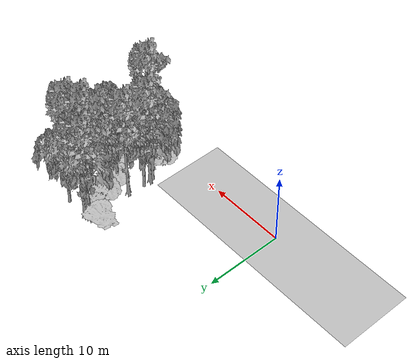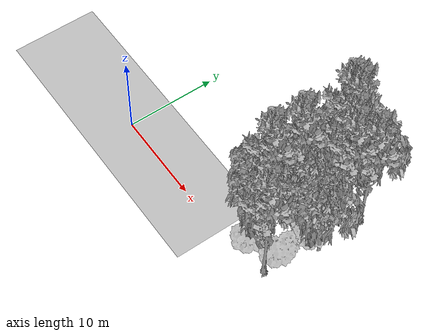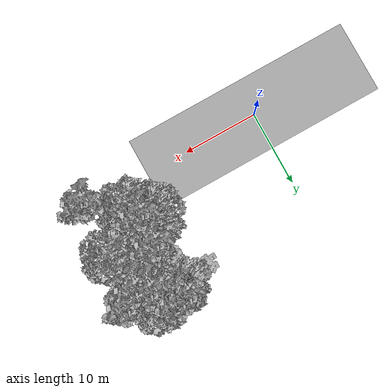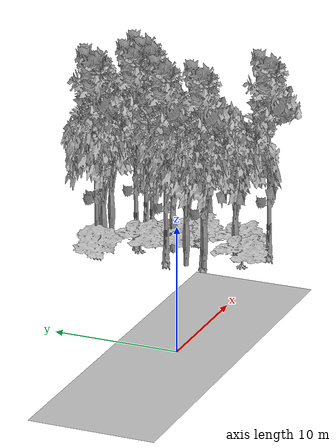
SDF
<sdf version="1.7">
 <world name="default">
  <model name="ground_plane">
   <static>1</static>
   <link name="link">
    <collision name="collision">
     <pose>-50 0 0 0 -0 0</pose>
     <geometry><plane><normal>0 0 1</normal><size>100 100</size></plane></geometry>
     <surface><contact><ode><min_depth>0.01</min_depth><max_vel>0</max_vel></ode></contact></surface>
    </collision>
    <visual name="grass">
     <cast_shadows>0</cast_shadows>
     <geometry>
      <mesh>
       <scale>0.5814285714285714 0.18142857142857144 0.1</scale>
       <uri>file://grass_plane/meshes/grass_plane.dae</uri>
      </mesh>
     </geometry>
    </visual>
   </link>
  </model>
  <model name="Tree 24">
   <static>1</static>
   <pose>19.27694145751201 8.679136142417018 0 1.57079 -0 0</pose>
   <link name="link">
    <collision name="collision">
     <geometry><mesh><scale>4 2.5 4</scale><uri>model://tree_1/meshes/tree_1.obj</uri></mesh></geometry>
    </collision>
    <visual name="visual">
     <geometry><mesh><scale>4 2.5 4</scale><uri>model://tree_1/meshes/tree_1.obj</uri></mesh></geometry>
    </visual>
   </link>
  </model>
  <model name="Tree 33">
   <static>1</static>
   <pose>20.469371365420756 14.50723271962391 0 1.57079 -0 0</pose>
   <link name="link">
    <collision name="collision">
     <geometry><mesh><scale>3.5 5 3.5</scale><uri>model://tree_2/meshes/tree_2.obj</uri></mesh></geometry>
    </collision>
    <visual name="visual">
     <geometry><mesh><scale>3.5 5 3.5</scale><uri>model://tree_2/meshes/tree_2.obj</uri></mesh></geometry>
    </visual>
   </link>
  </model>
  <model name="Tree 35">
   <static>1</static>
   <pose>17.55820511271034 13.923386057310417 0 1.57079 -0 0</pose>
   <link name="link">
    <collision name="collision">
     <geometry><mesh><scale>3.5 5 3.5</scale><uri>model://tree_2/meshes/tree_2.obj</uri></mesh></geometry>
    </collision>
    <visual name="visual">
     <geometry><mesh><scale>3.5 5 3.5</scale><uri>model://tree_2/meshes/tree_2.obj</uri></mesh></geometry>
    </visual>
   </link>
  </model>
  <model name="Tree 52">
   <static>1</static>
   <pose>17.71421692310868 14.36586388952043 0 1.57079 -0 0</pose>
   <link name="link">
    <collision name="collision">
     <geometry><mesh><scale>3.5 5 3.5</scale><uri>model://tree_9/meshes/tree_9.obj</uri></mesh></geometry>
    </collision>
    <visual name="visual">
     <geometry><mesh><scale>3.5 5 3.5</scale><uri>model://tree_9/meshes/tree_9.obj</uri></mesh></geometry>
    </visual>
   </link>
  </model>
  <model name="Tree 101">
   <static>1</static>
   <pose>18.866480025564783 2.898422225168126 0 1.57079 -0 0</pose>
   <link name="link">
    <collision name="collision">
     <geometry><mesh><scale>3.5 5 3.5</scale><uri>model://tree_2/meshes/tree_2.obj</uri></mesh></geometry>
    </collision>
    <visual name="visual">
     <geometry><mesh><scale>3.5 5 3.5</scale><uri>model://tree_2/meshes/tree_2.obj</uri></mesh></geometry>
    </visual>
   </link>
  </model>
  <model name="Tree 114">
   <static>1</static>
   <pose>17.035675849129007 4.935735902252393 0 1.57079 -0 0</pose>
   <link name="link">
    <collision name="collision">
     <geometry><mesh><scale>3.5 5 3.5</scale><uri>model://tree_9/meshes/tree_9.obj</uri></mesh></geometry>
    </collision>
    <visual name="visual">
     <geometry><mesh><scale>3.5 5 3.5</scale><uri>model://tree_9/meshes/tree_9.obj</uri></mesh></geometry>
    </visual>
   </link>
  </model>
  <model name="Tree 117">
   <static>1</static>
   <pose>21.145697071521965 11.142856893543915 0 1.57079 -0 0</pose>
   <link name="link">
    <collision name="collision">
     <geometry><mesh><scale>3.5 5 3.5</scale><uri>model://tree_9/meshes/tree_9.obj</uri></mesh></geometry>
    </collision>
    <visual name="visual">
     <geometry><mesh><scale>3.5 5 3.5</scale><uri>model://tree_9/meshes/tree_9.obj</uri></mesh></geometry>
    </visual>
   </link>
  </model>
  <model name="Tree 136">
   <static>1</static>
   <pose>16.887380662299748 14.171961930580977 0 1.57079 -0 0</pose>
   <link name="link">
    <collision name="collision">
     <geometry><mesh><scale>3.5 5 3.5</scale><uri>model://tree_9/meshes/tree_9.obj</uri></mesh></geometry>
    </collision>
    <visual name="visual">
     <geometry><mesh><scale>3.5 5 3.5</scale><uri>model://tree_9/meshes/tree_9.obj</uri></mesh></geometry>
    </visual>
   </link>
  </model>
  <model name="Tree 201">
   <static>1</static>
   <pose>18.992742942488164 8.386642838144596 0 1.57079 -0 0</pose>
   <link name="link">
    <collision name="collision">
     <geometry><mesh><scale>3.5 5 3.5</scale><uri>model://tree_2/meshes/tree_2.obj</uri></mesh></geometry>
    </collision>
    <visual name="visual">
     <geometry><mesh><scale>3.5 5 3.5</scale><uri>model://tree_2/meshes/tree_2.obj</uri></mesh></geometry>
    </visual>
   </link>
  </model>
  <model name="Tree 216">
   <static>1</static>
   <pose>18.125666693873626 1.986957766836376 0 1.57079 -0 0</pose>
   <link name="link">
    <collision name="collision">
     <geometry><mesh><scale>4 2.5 4</scale><uri>model://tree_1/meshes/tree_1.obj</uri></mesh></geometry>
    </collision>
    <visual name="visual">
     <geometry><mesh><scale>4 2.5 4</scale><uri>model://tree_1/meshes/tree_1.obj</uri></mesh></geometry>
    </visual>
   </link>
  </model>
  <model name="Tree 250">
   <static>1</static>
   <pose>16.690606231449408 4.6984684600426085 0 1.57079 -0 0</pose>
   <link name="link">
    <collision name="collision">
     <geometry><mesh><scale>3.5 5 3.5</scale><uri>model://tree_2/meshes/tree_2.obj</uri></mesh></geometry>
    </collision>
    <visual name="visual">
     <geometry><mesh><scale>3.5 5 3.5</scale><uri>model://tree_2/meshes/tree_2.obj</uri></mesh></geometry>
    </visual>
   </link>
  </model>
  <model name="Tree 256">
   <static>1</static>
   <pose>18.116116177263862 10.902681222989138 0 1.57079 -0 0</pose>
   <link name="link">
    <collision name="collision">
     <geometry><mesh><scale>4 2.5 4</scale><uri>model://tree_1/meshes/tree_1.obj</uri></mesh></geometry>
    </collision>
    <visual name="visual">
     <geometry><mesh><scale>4 2.5 4</scale><uri>model://tree_1/meshes/tree_1.obj</uri></mesh></geometry>
    </visual>
   </link>
  </model>
  <model name="Tree 258">
   <static>1</static>
   <pose>16.54919766744922 6.203549425354197 0 1.57079 -0 0</pose>
   <link name="link">
    <collision name="collision">
     <geometry><mesh><scale>3.5 5 3.5</scale><uri>model://tree_2/meshes/tree_2.obj</uri></mesh></geometry>
    </collision>
    <visual name="visual">
     <geometry><mesh><scale>3.5 5 3.5</scale><uri>model://tree_2/meshes/tree_2.obj</uri></mesh></geometry>
    </visual>
   </link>
  </model>
  <model name="Tree 325">
   <static>1</static>
   <pose>22.80380713243649 6.78435263596743 0 1.57079 -0 0</pose>
   <link name="link">
    <collision name="collision">
     <geometry><mesh><scale>3.5 5 3.5</scale><uri>model://tree_2/meshes/tree_2.obj</uri></mesh></geometry>
    </collision>
    <visual name="visual">
     <geometry><mesh><scale>3.5 5 3.5</scale><uri>model://tree_2/meshes/tree_2.obj</uri></mesh></geometry>
    </visual>
   </link>
  </model>
  <model name="Tree 431">
   <static>1</static>
   <pose>19.98783567654833 12.057015693619714 0 1.57079 -0 0</pose>
   <link name="link">
    <collision name="collision">
     <geometry><mesh><scale>3.5 5 3.5</scale><uri>model://tree_9/meshes/tree_9.obj</uri></mesh></geometry>
    </collision>
    <visual name="visual">
     <geometry><mesh><scale>3.5 5 3.5</scale><uri>model://tree_9/meshes/tree_9.obj</uri></mesh></geometry>
    </visual>
   </link>
  </model>
  <model name="Tree 461">
   <static>1</static>
   <pose>22.5812036931204 12.289349565873039 0 1.57079 -0 0</pose>
   <link name="link">
    <collision name="collision">
     <geometry><mesh><scale>3.5 5 3.5</scale><uri>model://tree_9/meshes/tree_9.obj</uri></mesh></geometry>
    </collision>
    <visual name="visual">
     <geometry><mesh><scale>3.5 5 3.5</scale><uri>model://tree_9/meshes/tree_9.obj</uri></mesh></geometry>
    </visual>
   </link>
  </model>
  <model name="Tree 463">
   <static>1</static>
   <pose>21.306108053927275 7.175880159924759 0 1.57079 -0 0</pose>
   <link name="link">
    <collision name="collision">
     <geometry><mesh><scale>4 2.5 4</scale><uri>model://tree_1/meshes/tree_1.obj</uri></mesh></geometry>
    </collision>
    <visual name="visual">
     <geometry><mesh><scale>4 2.5 4</scale><uri>model://tree_1/meshes/tree_1.obj</uri></mesh></geometry>
    </visual>
   </link>
  </model>
  <model name="Tree 476">
   <static>1</static>
   <pose>15.419852865910556 13.417196200905405 0 1.57079 -0 0</pose>
   <link name="link">
    <collision name="collision">
     <geometry><mesh><scale>3 2 3</scale><uri>model://tree_3/meshes/tree_3.obj</uri></mesh></geometry>
    </collision>
    <visual name="visual">
     <geometry><mesh><scale>3 2 3</scale><uri>model://tree_3/meshes/tree_3.obj</uri></mesh></geometry>
    </visual>
   </link>
  </model>
  <model name="Tree 479">
   <static>1</static>
   <pose>17.19516273195005 8.209823417926632 0 1.57079 -0 0</pose>
   <link name="link">
    <collision name="collision">
     <geometry><mesh><scale>3.5 5 3.5</scale><uri>model://tree_9/meshes/tree_9.obj</uri></mesh></geometry>
    </collision>
    <visual name="visual">
     <geometry><mesh><scale>3.5 5 3.5</scale><uri>model://tree_9/meshes/tree_9.obj</uri></mesh></geometry>
    </visual>
   </link>
  </model>
  <model name="Tree 503">
   <static>1</static>
   <pose>21.665831214396434 1.0570488077499292 0 1.57079 -0 0</pose>
   <link name="link">
    <collision name="collision">
     <geometry><mesh><scale>3.5 5 3.5</scale><uri>model://tree_9/meshes/tree_9.obj</uri></mesh></geometry>
    </collision>
    <visual name="visual">
     <geometry><mesh><scale>3.5 5 3.5</scale><uri>model://tree_9/meshes/tree_9.obj</uri></mesh></geometry>
    </visual>
   </link>
  </model>
  <model name="Tree 513">
   <static>1</static>
   <pose>20.935808258476527 3.247273018375793 0 1.57079 -0 0</pose>
   <link name="link">
    <collision name="collision">
     <geometry><mesh><scale>4 2.5 4</scale><uri>model://tree_1/meshes/tree_1.obj</uri></mesh></geometry>
    </collision>
    <visual name="visual">
     <geometry><mesh><scale>4 2.5 4</scale><uri>model://tree_1/meshes/tree_1.obj</uri></mesh></geometry>
    </visual>
   </link>
  </model>
  <model name="Bush 1">
   <static>1</static>
   <pose>20.59388338991488 6.771670739160591 0 1.57079 -0 0</pose>
   <link name="link">
    <collision name="collision">
     <geometry><mesh><scale>2 2 2</scale><uri>model://bush_3/meshes/bush_3.obj</uri></mesh></geometry>
     <surface><contact><collide_without_contact>false</collide_without_contact></contact></surface>
    </collision>
    <visual name="visual">
     <geometry><mesh><scale>2 2 2</scale><uri>model://bush_3/meshes/bush_3.obj</uri></mesh></geometry>
    </visual>
   </link>
  </model>
 </world>
</sdf>
